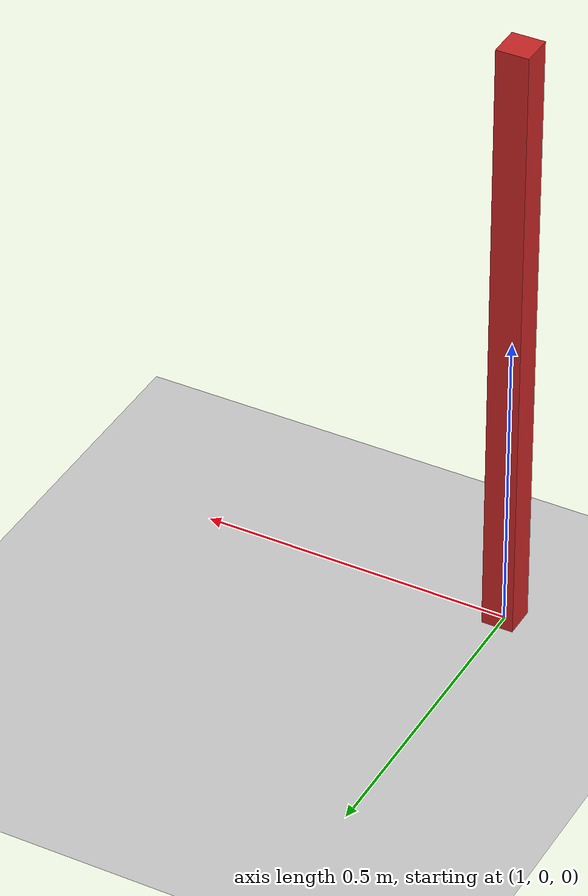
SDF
<?xml version="1.0" ?>
<sdf version="1.4">
  <world name="default">
    <include>
      <uri>model://ground_plane</uri>
    </include>

    <include>
      <uri>model://sun</uri>
    </include>

    <model name='unit_box_0'>
      <pose frame=''>1 0 0.5 0 0 0</pose>
      <link name='link'>
        <collision name='box_collision'>
          <geometry>
            <box>
              <size>0.050714260228040764 0.050714260228040764 1</size>
            </box>
          </geometry>
          <max_contacts>10</max_contacts>
          <surface>
            <contact>
              <ode/>
            </contact>
            <bounce/>
            <friction>
              <torsional>
                <ode/>
              </torsional>
              <ode/>
            </friction>
          </surface>
        </collision>
        <visual name='visual'>
          <geometry>
            <box>
              <size>0.050714260228040764 0.050714260228040764 1</size>
            </box>
          </geometry>
          <material>
            <script>
              <name>Gazebo/Red</name>
              <uri>file://media/materials/scripts/gazebo.material</uri>
            </script>
          </material>
        </visual>
        <self_collide>
          0
        </self_collide>
        <kinematic>
          0
        </kinematic>
        <gravity>
          1
        </gravity>
        <sensor name="box_contact_sensor" type="contact">
          <always_on>true</always_on>
          <update_rate>5.0</update_rate>
          <contact>
            <collision>box_collision</collision>
          </contact>
          <plugin name="box_bumper" filename="libgazebo_ros_bumper.so">
            <bumperTopicName>box_collision</bumperTopicName>
            <frameName>Box</frameName>
          </plugin>
        </sensor>
      </link>
    </model>
  </world>
</sdf>
